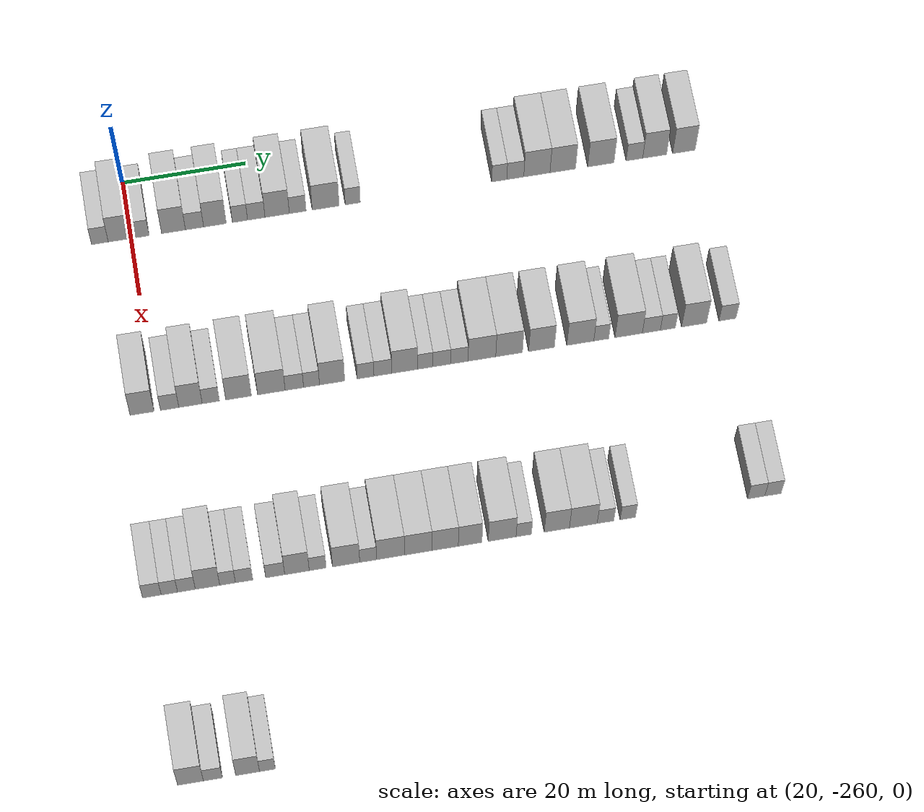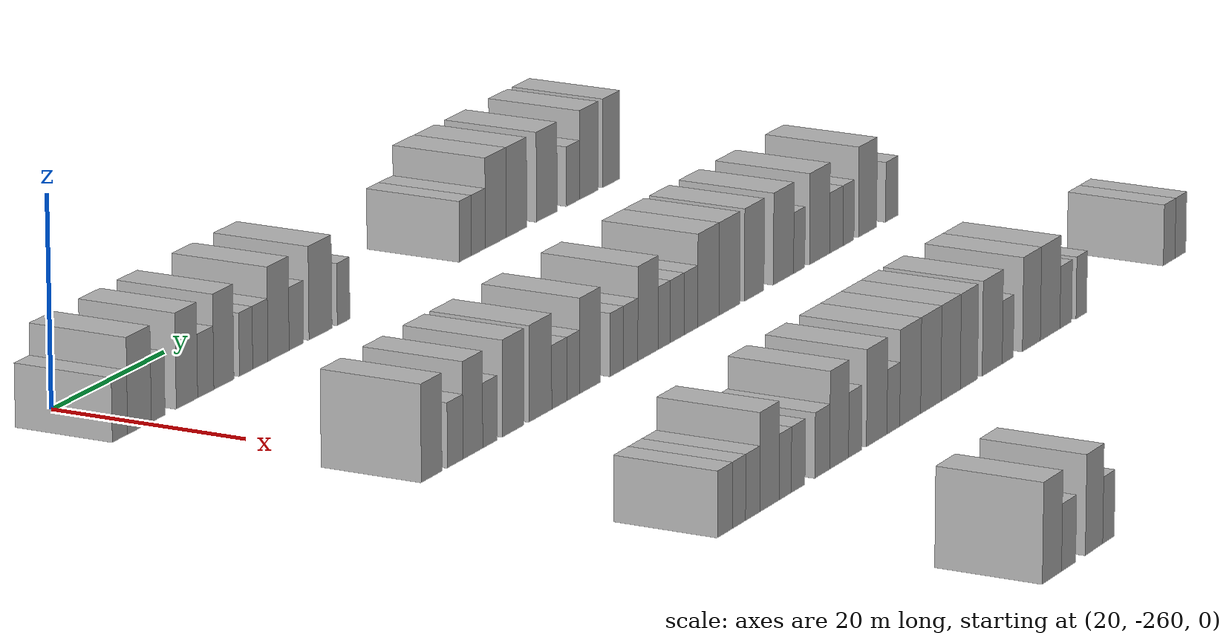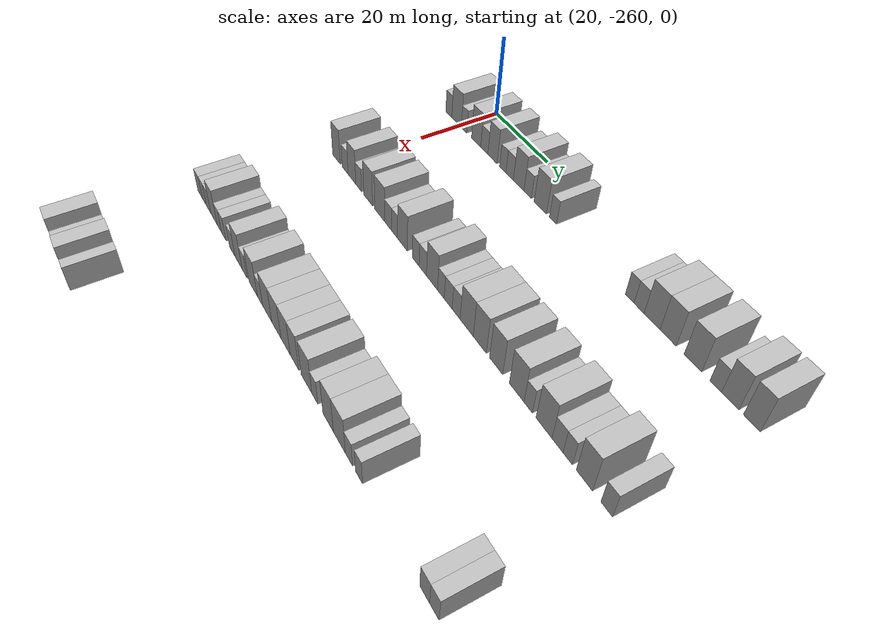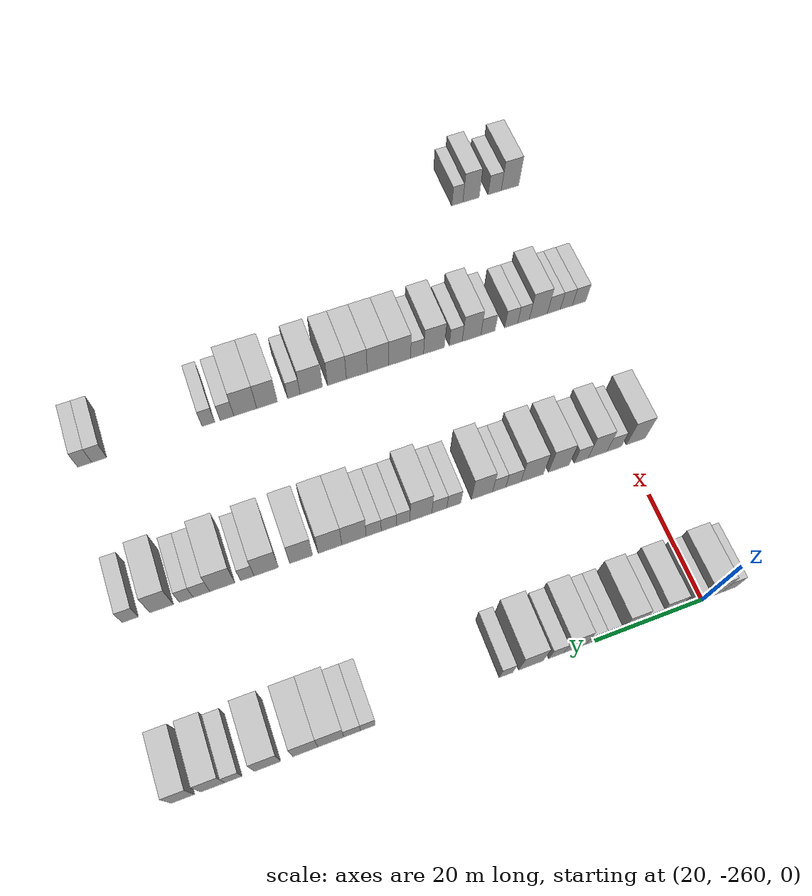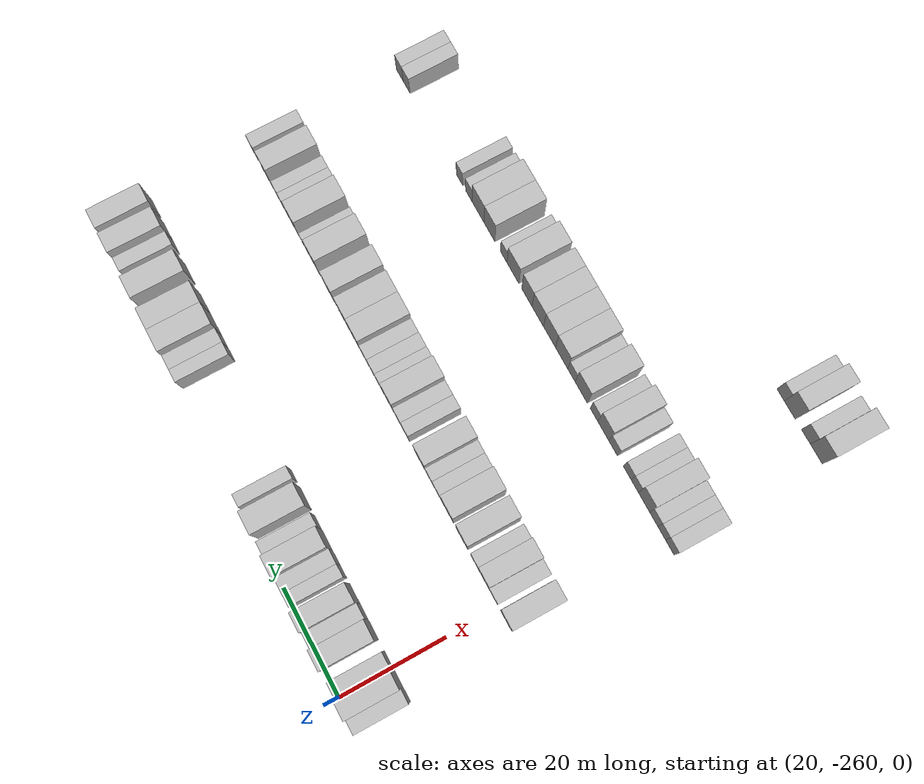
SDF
<sdf version="1.6">
 <world name="default">
  <model name="building_52">
   <static>1</static>
   <pose>25.0000 -264.9910 0 0.000000 0.000000 0.000000</pose>
   <link name="link">
    <pose>0 0 3.00 0 0 0</pose>
    <collision name="collision"><geometry><box><size>10.0000 2.6913 6.0000</size></box></geometry></collision>
    <visual name="visual">
     <cast_shadows>0</cast_shadows>
     <geometry><box><size>10.0000 2.6913 6.0000</size></box></geometry>
     <material>
      <script>
       <uri>model://HANNAS_wall/materials/scripts</uri>
       <uri>model://HANNAS_wall/materials/textures</uri>
       <name>vrc/HANNAS_wall</name>
      </script>
     </material>
    </visual>
   </link>
  </model>
  <model name="building_53">
   <static>1</static>
   <pose>25.0000 -261.5494 0 0.000000 0.000000 0.000000</pose>
   <link name="link">
    <pose>0 0 4.50 0 0 0</pose>
    <collision name="collision"><geometry><box><size>10.0000 4.1920 9.0000</size></box></geometry></collision>
    <visual name="visual">
     <cast_shadows>0</cast_shadows>
     <geometry><box><size>10.0000 4.1920 9.0000</size></box></geometry>
     <material>
      <script>
       <uri>model://HANNAS_wall/materials/scripts</uri>
       <uri>model://HANNAS_wall/materials/textures</uri>
       <name>vrc/HANNAS_wall</name>
      </script>
     </material>
    </visual>
   </link>
  </model>
  <model name="building_54">
   <static>1</static>
   <pose>25.0000 -258.2401 0 0.000000 0.000000 0.000000</pose>
   <link name="link">
    <pose>0 0 3.00 0 0 0</pose>
    <collision name="collision"><geometry><box><size>10.0000 2.4267 6.0000</size></box></geometry></collision>
    <visual name="visual">
     <cast_shadows>0</cast_shadows>
     <geometry><box><size>10.0000 2.4267 6.0000</size></box></geometry>
     <material>
      <script>
       <uri>model://HANNAS_wall/materials/scripts</uri>
       <uri>model://HANNAS_wall/materials/textures</uri>
       <name>vrc/HANNAS_wall</name>
      </script>
     </material>
    </visual>
   </link>
  </model>
  <model name="building_55">
   <static>1</static>
   <pose>25.0000 -253.1030 0 0.000000 0.000000 0.000000</pose>
   <link name="link">
    <pose>0 0 4.50 0 0 0</pose>
    <collision name="collision"><geometry><box><size>10.0000 3.8475 9.0000</size></box></geometry></collision>
    <visual name="visual">
     <cast_shadows>0</cast_shadows>
     <geometry><box><size>10.0000 3.8475 9.0000</size></box></geometry>
     <material>
      <script>
       <uri>model://HANNAS_wall/materials/scripts</uri>
       <uri>model://HANNAS_wall/materials/textures</uri>
       <name>vrc/HANNAS_wall</name>
      </script>
     </material>
    </visual>
   </link>
  </model>
  <model name="building_56">
   <static>1</static>
   <pose>25.0000 -249.7106 0 0.000000 0.000000 0.000000</pose>
   <link name="link">
    <pose>0 0 3.00 0 0 0</pose>
    <collision name="collision"><geometry><box><size>10.0000 2.9372 6.0000</size></box></geometry></collision>
    <visual name="visual">
     <cast_shadows>0</cast_shadows>
     <geometry><box><size>10.0000 2.9372 6.0000</size></box></geometry>
     <material>
      <script>
       <uri>model://HANNAS_wall/materials/scripts</uri>
       <uri>model://HANNAS_wall/materials/textures</uri>
       <name>vrc/HANNAS_wall</name>
      </script>
     </material>
    </visual>
   </link>
  </model>
  <model name="building_57">
   <static>1</static>
   <pose>25.0000 -246.4095 0 0.000000 0.000000 0.000000</pose>
   <link name="link">
    <pose>0 0 4.50 0 0 0</pose>
    <collision name="collision"><geometry><box><size>10.0000 3.6650 9.0000</size></box></geometry></collision>
    <visual name="visual">
     <cast_shadows>0</cast_shadows>
     <geometry><box><size>10.0000 3.6650 9.0000</size></box></geometry>
     <material>
      <script>
       <uri>model://HANNAS_wall/materials/scripts</uri>
       <uri>model://HANNAS_wall/materials/textures</uri>
       <name>vrc/HANNAS_wall</name>
      </script>
     </material>
    </visual>
   </link>
  </model>
  <model name="building_58">
   <static>1</static>
   <pose>25.0000 -242.3506 0 0.000000 0.000000 0.000000</pose>
   <link name="link">
    <pose>0 0 3.00 0 0 0</pose>
    <collision name="collision"><geometry><box><size>10.0000 2.4527 6.0000</size></box></geometry></collision>
    <visual name="visual">
     <cast_shadows>0</cast_shadows>
     <geometry><box><size>10.0000 2.4527 6.0000</size></box></geometry>
     <material>
      <script>
       <uri>model://HANNAS_wall/materials/scripts</uri>
       <uri>model://HANNAS_wall/materials/textures</uri>
       <name>vrc/HANNAS_wall</name>
      </script>
     </material>
    </visual>
   </link>
  </model>
  <model name="building_59">
   <static>1</static>
   <pose>25.0000 -239.7100 0 0.000000 0.000000 0.000000</pose>
   <link name="link">
    <pose>0 0 3.00 0 0 0</pose>
    <collision name="collision"><geometry><box><size>10.0000 2.8286 6.0000</size></box></geometry></collision>
    <visual name="visual">
     <cast_shadows>0</cast_shadows>
     <geometry><box><size>10.0000 2.8286 6.0000</size></box></geometry>
     <material>
      <script>
       <uri>model://HANNAS_wall/materials/scripts</uri>
       <uri>model://HANNAS_wall/materials/textures</uri>
       <name>vrc/HANNAS_wall</name>
      </script>
     </material>
    </visual>
   </link>
  </model>
  <model name="building_60">
   <static>1</static>
   <pose>25.0000 -236.3252 0 0.000000 0.000000 0.000000</pose>
   <link name="link">
    <pose>0 0 4.50 0 0 0</pose>
    <collision name="collision"><geometry><box><size>10.0000 3.9409 9.0000</size></box></geometry></collision>
    <visual name="visual">
     <cast_shadows>0</cast_shadows>
     <geometry><box><size>10.0000 3.9409 9.0000</size></box></geometry>
     <material>
      <script>
       <uri>model://HANNAS_wall/materials/scripts</uri>
       <uri>model://HANNAS_wall/materials/textures</uri>
       <name>vrc/HANNAS_wall</name>
      </script>
     </material>
    </visual>
   </link>
  </model>
  <model name="building_61">
   <static>1</static>
   <pose>25.0000 -232.9921 0 0.000000 0.000000 0.000000</pose>
   <link name="link">
    <pose>0 0 3.00 0 0 0</pose>
    <collision name="collision"><geometry><box><size>10.0000 2.7253 6.0000</size></box></geometry></collision>
    <visual name="visual">
     <cast_shadows>0</cast_shadows>
     <geometry><box><size>10.0000 2.7253 6.0000</size></box></geometry>
     <material>
      <script>
       <uri>model://HANNAS_wall/materials/scripts</uri>
       <uri>model://HANNAS_wall/materials/textures</uri>
       <name>vrc/HANNAS_wall</name>
      </script>
     </material>
    </visual>
   </link>
  </model>
  <model name="building_62">
   <static>1</static>
   <pose>25.0000 -228.4462 0 0.000000 0.000000 0.000000</pose>
   <link name="link">
    <pose>0 0 4.50 0 0 0</pose>
    <collision name="collision"><geometry><box><size>10.0000 4.3666 9.0000</size></box></geometry></collision>
    <visual name="visual">
     <cast_shadows>0</cast_shadows>
     <geometry><box><size>10.0000 4.3666 9.0000</size></box></geometry>
     <material>
      <script>
       <uri>model://HANNAS_wall/materials/scripts</uri>
       <uri>model://HANNAS_wall/materials/textures</uri>
       <name>vrc/HANNAS_wall</name>
      </script>
     </material>
    </visual>
   </link>
  </model>
  <model name="building_63">
   <static>1</static>
   <pose>25.0000 -224.0433 0 0.000000 0.000000 0.000000</pose>
   <link name="link">
    <pose>0 0 3.00 0 0 0</pose>
    <collision name="collision"><geometry><box><size>10.0000 2.4392 6.0000</size></box></geometry></collision>
    <visual name="visual">
     <cast_shadows>0</cast_shadows>
     <geometry><box><size>10.0000 2.4392 6.0000</size></box></geometry>
     <material>
      <script>
       <uri>model://HANNAS_wall/materials/scripts</uri>
       <uri>model://HANNAS_wall/materials/textures</uri>
       <name>vrc/HANNAS_wall</name>
      </script>
     </material>
    </visual>
   </link>
  </model>
  <model name="building_64">
   <static>1</static>
   <pose>25.0000 -200.1337 0 0.000000 0.000000 0.000000</pose>
   <link name="link">
    <pose>0 0 3.00 0 0 0</pose>
    <collision name="collision"><geometry><box><size>10.0000 2.4600 6.0000</size></box></geometry></collision>
    <visual name="visual">
     <cast_shadows>0</cast_shadows>
     <geometry><box><size>10.0000 2.4600 6.0000</size></box></geometry>
     <material>
      <script>
       <uri>model://HANNAS_wall/materials/scripts</uri>
       <uri>model://HANNAS_wall/materials/textures</uri>
       <name>vrc/HANNAS_wall</name>
      </script>
     </material>
    </visual>
   </link>
  </model>
  <model name="building_65">
   <static>1</static>
   <pose>25.0000 -197.5099 0 0.000000 0.000000 0.000000</pose>
   <link name="link">
    <pose>0 0 3.00 0 0 0</pose>
    <collision name="collision"><geometry><box><size>10.0000 2.7876 6.0000</size></box></geometry></collision>
    <visual name="visual">
     <cast_shadows>0</cast_shadows>
     <geometry><box><size>10.0000 2.7876 6.0000</size></box></geometry>
     <material>
      <script>
       <uri>model://HANNAS_wall/materials/scripts</uri>
       <uri>model://HANNAS_wall/materials/textures</uri>
       <name>vrc/HANNAS_wall</name>
      </script>
     </material>
    </visual>
   </link>
  </model>
  <model name="building_66">
   <static>1</static>
   <pose>25.0000 -193.9670 0 0.000000 0.000000 0.000000</pose>
   <link name="link">
    <pose>0 0 4.50 0 0 0</pose>
    <collision name="collision"><geometry><box><size>10.0000 4.2983 9.0000</size></box></geometry></collision>
    <visual name="visual">
     <cast_shadows>0</cast_shadows>
     <geometry><box><size>10.0000 4.2983 9.0000</size></box></geometry>
     <material>
      <script>
       <uri>model://HANNAS_wall/materials/scripts</uri>
       <uri>model://HANNAS_wall/materials/textures</uri>
       <name>vrc/HANNAS_wall</name>
      </script>
     </material>
    </visual>
   </link>
  </model>
  <model name="building_67">
   <static>1</static>
   <pose>25.0000 -189.7206 0 0.000000 0.000000 0.000000</pose>
   <link name="link">
    <pose>0 0 4.50 0 0 0</pose>
    <collision name="collision"><geometry><box><size>10.0000 4.1945 9.0000</size></box></geometry></collision>
    <visual name="visual">
     <cast_shadows>0</cast_shadows>
     <geometry><box><size>10.0000 4.1945 9.0000</size></box></geometry>
     <material>
      <script>
       <uri>model://HANNAS_wall/materials/scripts</uri>
       <uri>model://HANNAS_wall/materials/textures</uri>
       <name>vrc/HANNAS_wall</name>
      </script>
     </material>
    </visual>
   </link>
  </model>
  <model name="building_68">
   <static>1</static>
   <pose>25.0000 -183.4657 0 0.000000 0.000000 0.000000</pose>
   <link name="link">
    <pose>0 0 4.50 0 0 0</pose>
    <collision name="collision"><geometry><box><size>10.0000 4.3154 9.0000</size></box></geometry></collision>
    <visual name="visual">
     <cast_shadows>0</cast_shadows>
     <geometry><box><size>10.0000 4.3154 9.0000</size></box></geometry>
     <material>
      <script>
       <uri>model://HANNAS_wall/materials/scripts</uri>
       <uri>model://HANNAS_wall/materials/textures</uri>
       <name>vrc/HANNAS_wall</name>
      </script>
     </material>
    </visual>
   </link>
  </model>
  <model name="building_69">
   <static>1</static>
   <pose>25.0000 -177.9456 0 0.000000 0.000000 0.000000</pose>
   <link name="link">
    <pose>0 0 3.00 0 0 0</pose>
    <collision name="collision"><geometry><box><size>10.0000 2.7247 6.0000</size></box></geometry></collision>
    <visual name="visual">
     <cast_shadows>0</cast_shadows>
     <geometry><box><size>10.0000 2.7247 6.0000</size></box></geometry>
     <material>
      <script>
       <uri>model://HANNAS_wall/materials/scripts</uri>
       <uri>model://HANNAS_wall/materials/textures</uri>
       <name>vrc/HANNAS_wall</name>
      </script>
     </material>
    </visual>
   </link>
  </model>
  <model name="building_70">
   <static>1</static>
   <pose>25.0000 -174.6141 0 0.000000 0.000000 0.000000</pose>
   <link name="link">
    <pose>0 0 4.50 0 0 0</pose>
    <collision name="collision"><geometry><box><size>10.0000 3.9383 9.0000</size></box></geometry></collision>
    <visual name="visual">
     <cast_shadows>0</cast_shadows>
     <geometry><box><size>10.0000 3.9383 9.0000</size></box></geometry>
     <material>
      <script>
       <uri>model://HANNAS_wall/materials/scripts</uri>
       <uri>model://HANNAS_wall/materials/textures</uri>
       <name>vrc/HANNAS_wall</name>
      </script>
     </material>
    </visual>
   </link>
  </model>
  <model name="building_71">
   <static>1</static>
   <pose>25.0000 -169.7939 0 0.000000 0.000000 0.000000</pose>
   <link name="link">
    <pose>0 0 4.50 0 0 0</pose>
    <collision name="collision"><geometry><box><size>10.0000 3.7021 9.0000</size></box></geometry></collision>
    <visual name="visual">
     <cast_shadows>0</cast_shadows>
     <geometry><box><size>10.0000 3.7021 9.0000</size></box></geometry>
     <material>
      <script>
       <uri>model://HANNAS_wall/materials/scripts</uri>
       <uri>model://HANNAS_wall/materials/textures</uri>
       <name>vrc/HANNAS_wall</name>
      </script>
     </material>
    </visual>
   </link>
  </model>
  <model name="building_275">
   <static>1</static>
   <pose>55.0000 -262.3525 0 0.000000 0.000000 0.000000</pose>
   <link name="link">
    <pose>0 0 4.50 0 0 0</pose>
    <collision name="collision"><geometry><box><size>10.0000 3.7981 9.0000</size></box></geometry></collision>
    <visual name="visual">
     <cast_shadows>0</cast_shadows>
     <geometry><box><size>10.0000 3.7981 9.0000</size></box></geometry>
     <material>
      <script>
       <uri>model://HANNAS_wall/materials/scripts</uri>
       <uri>model://HANNAS_wall/materials/textures</uri>
       <name>vrc/HANNAS_wall</name>
      </script>
     </material>
    </visual>
   </link>
  </model>
  <model name="building_276">
   <static>1</static>
   <pose>55.0000 -258.0051 0 0.000000 0.000000 0.000000</pose>
   <link name="link">
    <pose>0 0 3.00 0 0 0</pose>
    <collision name="collision"><geometry><box><size>10.0000 2.8965 6.0000</size></box></geometry></collision>
    <visual name="visual">
     <cast_shadows>0</cast_shadows>
     <geometry><box><size>10.0000 2.8965 6.0000</size></box></geometry>
     <material>
      <script>
       <uri>model://HANNAS_wall/materials/scripts</uri>
       <uri>model://HANNAS_wall/materials/textures</uri>
       <name>vrc/HANNAS_wall</name>
      </script>
     </material>
    </visual>
   </link>
  </model>
  <model name="building_277">
   <static>1</static>
   <pose>55.0000 -254.7035 0 0.000000 0.000000 0.000000</pose>
   <link name="link">
    <pose>0 0 4.50 0 0 0</pose>
    <collision name="collision"><geometry><box><size>10.0000 3.7068 9.0000</size></box></geometry></collision>
    <visual name="visual">
     <cast_shadows>0</cast_shadows>
     <geometry><box><size>10.0000 3.7068 9.0000</size></box></geometry>
     <material>
      <script>
       <uri>model://HANNAS_wall/materials/scripts</uri>
       <uri>model://HANNAS_wall/materials/textures</uri>
       <name>vrc/HANNAS_wall</name>
      </script>
     </material>
    </visual>
   </link>
  </model>
  <model name="building_278">
   <static>1</static>
   <pose>55.0000 -251.4921 0 0.000000 0.000000 0.000000</pose>
   <link name="link">
    <pose>0 0 3.00 0 0 0</pose>
    <collision name="collision"><geometry><box><size>10.0000 2.7159 6.0000</size></box></geometry></collision>
    <visual name="visual">
     <cast_shadows>0</cast_shadows>
     <geometry><box><size>10.0000 2.7159 6.0000</size></box></geometry>
     <material>
      <script>
       <uri>model://HANNAS_wall/materials/scripts</uri>
       <uri>model://HANNAS_wall/materials/textures</uri>
       <name>vrc/HANNAS_wall</name>
      </script>
     </material>
    </visual>
   </link>
  </model>
  <model name="building_279">
   <static>1</static>
   <pose>55.0000 -247.1035 0 0.000000 0.000000 0.000000</pose>
   <link name="link">
    <pose>0 0 4.50 0 0 0</pose>
    <collision name="collision"><geometry><box><size>10.0000 4.0614 9.0000</size></box></geometry></collision>
    <visual name="visual">
     <cast_shadows>0</cast_shadows>
     <geometry><box><size>10.0000 4.0614 9.0000</size></box></geometry>
     <material>
      <script>
       <uri>model://HANNAS_wall/materials/scripts</uri>
       <uri>model://HANNAS_wall/materials/textures</uri>
       <name>vrc/HANNAS_wall</name>
      </script>
     </material>
    </visual>
   </link>
  </model>
  <model name="building_280">
   <static>1</static>
   <pose>55.0000 -241.8878 0 0.000000 0.000000 0.000000</pose>
   <link name="link">
    <pose>0 0 4.50 0 0 0</pose>
    <collision name="collision"><geometry><box><size>10.0000 4.3700 9.0000</size></box></geometry></collision>
    <visual name="visual">
     <cast_shadows>0</cast_shadows>
     <geometry><box><size>10.0000 4.3700 9.0000</size></box></geometry>
     <material>
      <script>
       <uri>model://HANNAS_wall/materials/scripts</uri>
       <uri>model://HANNAS_wall/materials/textures</uri>
       <name>vrc/HANNAS_wall</name>
      </script>
     </material>
    </visual>
   </link>
  </model>
  <model name="building_281">
   <static>1</static>
   <pose>55.0000 -238.2404 0 0.000000 0.000000 0.000000</pose>
   <link name="link">
    <pose>0 0 3.00 0 0 0</pose>
    <collision name="collision"><geometry><box><size>10.0000 2.9246 6.0000</size></box></geometry></collision>
    <visual name="visual">
     <cast_shadows>0</cast_shadows>
     <geometry><box><size>10.0000 2.9246 6.0000</size></box></geometry>
     <material>
      <script>
       <uri>model://HANNAS_wall/materials/scripts</uri>
       <uri>model://HANNAS_wall/materials/textures</uri>
       <name>vrc/HANNAS_wall</name>
      </script>
     </material>
    </visual>
   </link>
  </model>
  <model name="building_282">
   <static>1</static>
   <pose>55.0000 -235.5116 0 0.000000 0.000000 0.000000</pose>
   <link name="link">
    <pose>0 0 3.00 0 0 0</pose>
    <collision name="collision"><geometry><box><size>10.0000 2.5330 6.0000</size></box></geometry></collision>
    <visual name="visual">
     <cast_shadows>0</cast_shadows>
     <geometry><box><size>10.0000 2.5330 6.0000</size></box></geometry>
     <material>
      <script>
       <uri>model://HANNAS_wall/materials/scripts</uri>
       <uri>model://HANNAS_wall/materials/textures</uri>
       <name>vrc/HANNAS_wall</name>
      </script>
     </material>
    </visual>
   </link>
  </model>
  <model name="building_283">
   <static>1</static>
   <pose>55.0000 -232.2417 0 0.000000 0.000000 0.000000</pose>
   <link name="link">
    <pose>0 0 4.50 0 0 0</pose>
    <collision name="collision"><geometry><box><size>10.0000 4.0069 9.0000</size></box></geometry></collision>
    <visual name="visual">
     <cast_shadows>0</cast_shadows>
     <geometry><box><size>10.0000 4.0069 9.0000</size></box></geometry>
     <material>
      <script>
       <uri>model://HANNAS_wall/materials/scripts</uri>
       <uri>model://HANNAS_wall/materials/textures</uri>
       <name>vrc/HANNAS_wall</name>
      </script>
     </material>
    </visual>
   </link>
  </model>
  <model name="building_284">
   <static>1</static>
   <pose>55.0000 -226.9097 0 0.000000 0.000000 0.000000</pose>
   <link name="link">
    <pose>0 0 3.00 0 0 0</pose>
    <collision name="collision"><geometry><box><size>10.0000 2.6571 6.0000</size></box></geometry></collision>
    <visual name="visual">
     <cast_shadows>0</cast_shadows>
     <geometry><box><size>10.0000 2.6571 6.0000</size></box></geometry>
     <material>
      <script>
       <uri>model://HANNAS_wall/materials/scripts</uri>
       <uri>model://HANNAS_wall/materials/textures</uri>
       <name>vrc/HANNAS_wall</name>
      </script>
     </material>
    </visual>
   </link>
  </model>
  <model name="building_285">
   <static>1</static>
   <pose>55.0000 -224.1643 0 0.000000 0.000000 0.000000</pose>
   <link name="link">
    <pose>0 0 3.00 0 0 0</pose>
    <collision name="collision"><geometry><box><size>10.0000 2.8337 6.0000</size></box></geometry></collision>
    <visual name="visual">
     <cast_shadows>0</cast_shadows>
     <geometry><box><size>10.0000 2.8337 6.0000</size></box></geometry>
     <material>
      <script>
       <uri>model://HANNAS_wall/materials/scripts</uri>
       <uri>model://HANNAS_wall/materials/textures</uri>
       <name>vrc/HANNAS_wall</name>
      </script>
     </material>
    </visual>
   </link>
  </model>
  <model name="building_286">
   <static>1</static>
   <pose>55.0000 -220.6817 0 0.000000 0.000000 0.000000</pose>
   <link name="link">
    <pose>0 0 4.50 0 0 0</pose>
    <collision name="collision"><geometry><box><size>10.0000 4.1314 9.0000</size></box></geometry></collision>
    <visual name="visual">
     <cast_shadows>0</cast_shadows>
     <geometry><box><size>10.0000 4.1314 9.0000</size></box></geometry>
     <material>
      <script>
       <uri>model://HANNAS_wall/materials/scripts</uri>
       <uri>model://HANNAS_wall/materials/textures</uri>
       <name>vrc/HANNAS_wall</name>
      </script>
     </material>
    </visual>
   </link>
  </model>
  <model name="building_287">
   <static>1</static>
   <pose>55.0000 -217.3906 0 0.000000 0.000000 0.000000</pose>
   <link name="link">
    <pose>0 0 3.00 0 0 0</pose>
    <collision name="collision"><geometry><box><size>10.0000 2.4509 6.0000</size></box></geometry></collision>
    <visual name="visual">
     <cast_shadows>0</cast_shadows>
     <geometry><box><size>10.0000 2.4509 6.0000</size></box></geometry>
     <material>
      <script>
       <uri>model://HANNAS_wall/materials/scripts</uri>
       <uri>model://HANNAS_wall/materials/textures</uri>
       <name>vrc/HANNAS_wall</name>
      </script>
     </material>
    </visual>
   </link>
  </model>
  <model name="building_288">
   <static>1</static>
   <pose>55.0000 -214.7523 0 0.000000 0.000000 0.000000</pose>
   <link name="link">
    <pose>0 0 3.00 0 0 0</pose>
    <collision name="collision"><geometry><box><size>10.0000 2.8257 6.0000</size></box></geometry></collision>
    <visual name="visual">
     <cast_shadows>0</cast_shadows>
     <geometry><box><size>10.0000 2.8257 6.0000</size></box></geometry>
     <material>
      <script>
       <uri>model://HANNAS_wall/materials/scripts</uri>
       <uri>model://HANNAS_wall/materials/textures</uri>
       <name>vrc/HANNAS_wall</name>
      </script>
     </material>
    </visual>
   </link>
  </model>
  <model name="building_289">
   <static>1</static>
   <pose>55.0000 -211.9487 0 0.000000 0.000000 0.000000</pose>
   <link name="link">
    <pose>0 0 3.00 0 0 0</pose>
    <collision name="collision"><geometry><box><size>10.0000 2.7816 6.0000</size></box></geometry></collision>
    <visual name="visual">
     <cast_shadows>0</cast_shadows>
     <geometry><box><size>10.0000 2.7816 6.0000</size></box></geometry>
     <material>
      <script>
       <uri>model://HANNAS_wall/materials/scripts</uri>
       <uri>model://HANNAS_wall/materials/textures</uri>
       <name>vrc/HANNAS_wall</name>
      </script>
     </material>
    </visual>
   </link>
  </model>
  <model name="building_290">
   <static>1</static>
   <pose>55.0000 -208.3423 0 0.000000 0.000000 0.000000</pose>
   <link name="link">
    <pose>0 0 4.50 0 0 0</pose>
    <collision name="collision"><geometry><box><size>10.0000 4.4313 9.0000</size></box></geometry></collision>
    <visual name="visual">
     <cast_shadows>0</cast_shadows>
     <geometry><box><size>10.0000 4.4313 9.0000</size></box></geometry>
     <material>
      <script>
       <uri>model://HANNAS_wall/materials/scripts</uri>
       <uri>model://HANNAS_wall/materials/textures</uri>
       <name>vrc/HANNAS_wall</name>
      </script>
     </material>
    </visual>
   </link>
  </model>
  <model name="building_291">
   <static>1</static>
   <pose>55.0000 -203.9882 0 0.000000 0.000000 0.000000</pose>
   <link name="link">
    <pose>0 0 4.50 0 0 0</pose>
    <collision name="collision"><geometry><box><size>10.0000 4.2769 9.0000</size></box></geometry></collision>
    <visual name="visual">
     <cast_shadows>0</cast_shadows>
     <geometry><box><size>10.0000 4.2769 9.0000</size></box></geometry>
     <material>
      <script>
       <uri>model://HANNAS_wall/materials/scripts</uri>
       <uri>model://HANNAS_wall/materials/textures</uri>
       <name>vrc/HANNAS_wall</name>
      </script>
     </material>
    </visual>
   </link>
  </model>
  <model name="building_292">
   <static>1</static>
   <pose>55.0000 -198.7844 0 0.000000 0.000000 0.000000</pose>
   <link name="link">
    <pose>0 0 4.50 0 0 0</pose>
    <collision name="collision"><geometry><box><size>10.0000 4.1308 9.0000</size></box></geometry></collision>
    <visual name="visual">
     <cast_shadows>0</cast_shadows>
     <geometry><box><size>10.0000 4.1308 9.0000</size></box></geometry>
     <material>
      <script>
       <uri>model://HANNAS_wall/materials/scripts</uri>
       <uri>model://HANNAS_wall/materials/textures</uri>
       <name>vrc/HANNAS_wall</name>
      </script>
     </material>
    </visual>
   </link>
  </model>
  <model name="building_293">
   <static>1</static>
   <pose>55.0000 -192.5557 0 0.000000 0.000000 0.000000</pose>
   <link name="link">
    <pose>0 0 4.50 0 0 0</pose>
    <collision name="collision"><geometry><box><size>10.0000 4.3266 9.0000</size></box></geometry></collision>
    <visual name="visual">
     <cast_shadows>0</cast_shadows>
     <geometry><box><size>10.0000 4.3266 9.0000</size></box></geometry>
     <material>
      <script>
       <uri>model://HANNAS_wall/materials/scripts</uri>
       <uri>model://HANNAS_wall/materials/textures</uri>
       <name>vrc/HANNAS_wall</name>
      </script>
     </material>
    </visual>
   </link>
  </model>
  <model name="building_294">
   <static>1</static>
   <pose>55.0000 -189.1878 0 0.000000 0.000000 0.000000</pose>
   <link name="link">
    <pose>0 0 3.00 0 0 0</pose>
    <collision name="collision"><geometry><box><size>10.0000 2.4092 6.0000</size></box></geometry></collision>
    <visual name="visual">
     <cast_shadows>0</cast_shadows>
     <geometry><box><size>10.0000 2.4092 6.0000</size></box></geometry>
     <material>
      <script>
       <uri>model://HANNAS_wall/materials/scripts</uri>
       <uri>model://HANNAS_wall/materials/textures</uri>
       <name>vrc/HANNAS_wall</name>
      </script>
     </material>
    </visual>
   </link>
  </model>
  <model name="building_295">
   <static>1</static>
   <pose>55.0000 -184.7825 0 0.000000 0.000000 0.000000</pose>
   <link name="link">
    <pose>0 0 4.50 0 0 0</pose>
    <collision name="collision"><geometry><box><size>10.0000 4.4012 9.0000</size></box></geometry></collision>
    <visual name="visual">
     <cast_shadows>0</cast_shadows>
     <geometry><box><size>10.0000 4.4012 9.0000</size></box></geometry>
     <material>
      <script>
       <uri>model://HANNAS_wall/materials/scripts</uri>
       <uri>model://HANNAS_wall/materials/textures</uri>
       <name>vrc/HANNAS_wall</name>
      </script>
     </material>
    </visual>
   </link>
  </model>
  <model name="building_296">
   <static>1</static>
   <pose>55.0000 -181.1320 0 0.000000 0.000000 0.000000</pose>
   <link name="link">
    <pose>0 0 3.00 0 0 0</pose>
    <collision name="collision"><geometry><box><size>10.0000 2.8998 6.0000</size></box></geometry></collision>
    <visual name="visual">
     <cast_shadows>0</cast_shadows>
     <geometry><box><size>10.0000 2.8998 6.0000</size></box></geometry>
     <material>
      <script>
       <uri>model://HANNAS_wall/materials/scripts</uri>
       <uri>model://HANNAS_wall/materials/textures</uri>
       <name>vrc/HANNAS_wall</name>
      </script>
     </material>
    </visual>
   </link>
  </model>
  <model name="building_297">
   <static>1</static>
   <pose>55.0000 -178.4665 0 0.000000 0.000000 0.000000</pose>
   <link name="link">
    <pose>0 0 3.00 0 0 0</pose>
    <collision name="collision"><geometry><box><size>10.0000 2.4311 6.0000</size></box></geometry></collision>
    <visual name="visual">
     <cast_shadows>0</cast_shadows>
     <geometry><box><size>10.0000 2.4311 6.0000</size></box></geometry>
     <material>
      <script>
       <uri>model://HANNAS_wall/materials/scripts</uri>
       <uri>model://HANNAS_wall/materials/textures</uri>
       <name>vrc/HANNAS_wall</name>
      </script>
     </material>
    </visual>
   </link>
  </model>
  <model name="building_298">
   <static>1</static>
   <pose>55.0000 -174.2325 0 0.000000 0.000000 0.000000</pose>
   <link name="link">
    <pose>0 0 4.50 0 0 0</pose>
    <collision name="collision"><geometry><box><size>10.0000 4.0370 9.0000</size></box></geometry></collision>
    <visual name="visual">
     <cast_shadows>0</cast_shadows>
     <geometry><box><size>10.0000 4.0370 9.0000</size></box></geometry>
     <material>
      <script>
       <uri>model://HANNAS_wall/materials/scripts</uri>
       <uri>model://HANNAS_wall/materials/textures</uri>
       <name>vrc/HANNAS_wall</name>
      </script>
     </material>
    </visual>
   </link>
  </model>
  <model name="building_299">
   <static>1</static>
   <pose>55.0000 -168.8327 0 0.000000 0.000000 0.000000</pose>
   <link name="link">
    <pose>0 0 3.00 0 0 0</pose>
    <collision name="collision"><geometry><box><size>10.0000 2.7624 6.0000</size></box></geometry></collision>
    <visual name="visual">
     <cast_shadows>0</cast_shadows>
     <geometry><box><size>10.0000 2.7624 6.0000</size></box></geometry>
     <material>
      <script>
       <uri>model://HANNAS_wall/materials/scripts</uri>
       <uri>model://HANNAS_wall/materials/textures</uri>
       <name>vrc/HANNAS_wall</name>
      </script>
     </material>
    </visual>
   </link>
  </model>
  <model name="building_500">
   <static>1</static>
   <pose>85.0000 -265.0269 0 0.000000 0.000000 0.000000</pose>
   <link name="link">
    <pose>0 0 3.00 0 0 0</pose>
    <collision name="collision"><geometry><box><size>10.0000 2.8655 6.0000</size></box></geometry></collision>
    <visual name="visual">
     <cast_shadows>0</cast_shadows>
     <geometry><box><size>10.0000 2.8655 6.0000</size></box></geometry>
     <material>
      <script>
       <uri>model://HANNAS_wall/materials/scripts</uri>
       <uri>model://HANNAS_wall/materials/textures</uri>
       <name>vrc/HANNAS_wall</name>
      </script>
     </material>
    </visual>
   </link>
  </model>
  <model name="building_501">
   <static>1</static>
   <pose>85.0000 -262.3243 0 0.000000 0.000000 0.000000</pose>
   <link name="link">
    <pose>0 0 3.00 0 0 0</pose>
    <collision name="collision"><geometry><box><size>10.0000 2.5398 6.0000</size></box></geometry></collision>
    <visual name="visual">
     <cast_shadows>0</cast_shadows>
     <geometry><box><size>10.0000 2.5398 6.0000</size></box></geometry>
     <material>
      <script>
       <uri>model://HANNAS_wall/materials/scripts</uri>
       <uri>model://HANNAS_wall/materials/textures</uri>
       <name>vrc/HANNAS_wall</name>
      </script>
     </material>
    </visual>
   </link>
  </model>
  <model name="building_502">
   <static>1</static>
   <pose>85.0000 -259.6791 0 0.000000 0.000000 0.000000</pose>
   <link name="link">
    <pose>0 0 3.00 0 0 0</pose>
    <collision name="collision"><geometry><box><size>10.0000 2.7506 6.0000</size></box></geometry></collision>
    <visual name="visual">
     <cast_shadows>0</cast_shadows>
     <geometry><box><size>10.0000 2.7506 6.0000</size></box></geometry>
     <material>
      <script>
       <uri>model://HANNAS_wall/materials/scripts</uri>
       <uri>model://HANNAS_wall/materials/textures</uri>
       <name>vrc/HANNAS_wall</name>
      </script>
     </material>
    </visual>
   </link>
  </model>
  <model name="building_503">
   <static>1</static>
   <pose>85.0000 -256.4132 0 0.000000 0.000000 0.000000</pose>
   <link name="link">
    <pose>0 0 4.50 0 0 0</pose>
    <collision name="collision"><geometry><box><size>10.0000 3.7813 9.0000</size></box></geometry></collision>
    <visual name="visual">
     <cast_shadows>0</cast_shadows>
     <geometry><box><size>10.0000 3.7813 9.0000</size></box></geometry>
     <material>
      <script>
       <uri>model://HANNAS_wall/materials/scripts</uri>
       <uri>model://HANNAS_wall/materials/textures</uri>
       <name>vrc/HANNAS_wall</name>
      </script>
     </material>
    </visual>
   </link>
  </model>
  <model name="building_504">
   <static>1</static>
   <pose>85.0000 -253.3120 0 0.000000 0.000000 0.000000</pose>
   <link name="link">
    <pose>0 0 3.00 0 0 0</pose>
    <collision name="collision"><geometry><box><size>10.0000 2.4211 6.0000</size></box></geometry></collision>
    <visual name="visual">
     <cast_shadows>0</cast_shadows>
     <geometry><box><size>10.0000 2.4211 6.0000</size></box></geometry>
     <material>
      <script>
       <uri>model://HANNAS_wall/materials/scripts</uri>
       <uri>model://HANNAS_wall/materials/textures</uri>
       <name>vrc/HANNAS_wall</name>
      </script>
     </material>
    </visual>
   </link>
  </model>
  <model name="building_505">
   <static>1</static>
   <pose>85.0000 -250.7532 0 0.000000 0.000000 0.000000</pose>
   <link name="link">
    <pose>0 0 3.00 0 0 0</pose>
    <collision name="collision"><geometry><box><size>10.0000 2.6965 6.0000</size></box></geometry></collision>
    <visual name="visual">
     <cast_shadows>0</cast_shadows>
     <geometry><box><size>10.0000 2.6965 6.0000</size></box></geometry>
     <material>
      <script>
       <uri>model://HANNAS_wall/materials/scripts</uri>
       <uri>model://HANNAS_wall/materials/textures</uri>
       <name>vrc/HANNAS_wall</name>
      </script>
     </material>
    </visual>
   </link>
  </model>
  <model name="building_506">
   <static>1</static>
   <pose>85.0000 -245.9302 0 0.000000 0.000000 0.000000</pose>
   <link name="link">
    <pose>0 0 3.00 0 0 0</pose>
    <collision name="collision"><geometry><box><size>10.0000 2.9495 6.0000</size></box></geometry></collision>
    <visual name="visual">
     <cast_shadows>0</cast_shadows>
     <geometry><box><size>10.0000 2.9495 6.0000</size></box></geometry>
     <material>
      <script>
       <uri>model://HANNAS_wall/materials/scripts</uri>
       <uri>model://HANNAS_wall/materials/textures</uri>
       <name>vrc/HANNAS_wall</name>
      </script>
     </material>
    </visual>
   </link>
  </model>
  <model name="building_507">
   <static>1</static>
   <pose>85.0000 -242.5491 0 0.000000 0.000000 0.000000</pose>
   <link name="link">
    <pose>0 0 4.50 0 0 0</pose>
    <collision name="collision"><geometry><box><size>10.0000 3.8126 9.0000</size></box></geometry></collision>
    <visual name="visual">
     <cast_shadows>0</cast_shadows>
     <geometry><box><size>10.0000 3.8126 9.0000</size></box></geometry>
     <material>
      <script>
       <uri>model://HANNAS_wall/materials/scripts</uri>
       <uri>model://HANNAS_wall/materials/textures</uri>
       <name>vrc/HANNAS_wall</name>
      </script>
     </material>
    </visual>
   </link>
  </model>
  <model name="building_508">
   <static>1</static>
   <pose>85.0000 -239.3296 0 0.000000 0.000000 0.000000</pose>
   <link name="link">
    <pose>0 0 3.00 0 0 0</pose>
    <collision name="collision"><geometry><box><size>10.0000 2.6264 6.0000</size></box></geometry></collision>
    <visual name="visual">
     <cast_shadows>0</cast_shadows>
     <geometry><box><size>10.0000 2.6264 6.0000</size></box></geometry>
     <material>
      <script>
       <uri>model://HANNAS_wall/materials/scripts</uri>
       <uri>model://HANNAS_wall/materials/textures</uri>
       <name>vrc/HANNAS_wall</name>
      </script>
     </material>
    </visual>
   </link>
  </model>
  <model name="building_509">
   <static>1</static>
   <pose>85.0000 -234.9002 0 0.000000 0.000000 0.000000</pose>
   <link name="link">
    <pose>0 0 4.50 0 0 0</pose>
    <collision name="collision"><geometry><box><size>10.0000 4.2324 9.0000</size></box></geometry></collision>
    <visual name="visual">
     <cast_shadows>0</cast_shadows>
     <geometry><box><size>10.0000 4.2324 9.0000</size></box></geometry>
     <material>
      <script>
       <uri>model://HANNAS_wall/materials/scripts</uri>
       <uri>model://HANNAS_wall/materials/textures</uri>
       <name>vrc/HANNAS_wall</name>
      </script>
     </material>
    </visual>
   </link>
  </model>
  <model name="building_510">
   <static>1</static>
   <pose>85.0000 -231.4675 0 0.000000 0.000000 0.000000</pose>
   <link name="link">
    <pose>0 0 3.00 0 0 0</pose>
    <collision name="collision"><geometry><box><size>10.0000 2.6330 6.0000</size></box></geometry></collision>
    <visual name="visual">
     <cast_shadows>0</cast_shadows>
     <geometry><box><size>10.0000 2.6330 6.0000</size></box></geometry>
     <material>
      <script>
       <uri>model://HANNAS_wall/materials/scripts</uri>
       <uri>model://HANNAS_wall/materials/textures</uri>
       <name>vrc/HANNAS_wall</name>
      </script>
     </material>
    </visual>
   </link>
  </model>
  <model name="building_511">
   <static>1</static>
   <pose>85.0000 -227.9701 0 0.000000 0.000000 0.000000</pose>
   <link name="link">
    <pose>0 0 4.50 0 0 0</pose>
    <collision name="collision"><geometry><box><size>10.0000 4.3618 9.0000</size></box></geometry></collision>
    <visual name="visual">
     <cast_shadows>0</cast_shadows>
     <geometry><box><size>10.0000 4.3618 9.0000</size></box></geometry>
     <material>
      <script>
       <uri>model://HANNAS_wall/materials/scripts</uri>
       <uri>model://HANNAS_wall/materials/textures</uri>
       <name>vrc/HANNAS_wall</name>
      </script>
     </material>
    </visual>
   </link>
  </model>
  <model name="building_512">
   <static>1</static>
   <pose>85.0000 -223.6549 0 0.000000 0.000000 0.000000</pose>
   <link name="link">
    <pose>0 0 4.50 0 0 0</pose>
    <collision name="collision"><geometry><box><size>10.0000 4.2687 9.0000</size></box></geometry></collision>
    <visual name="visual">
     <cast_shadows>0</cast_shadows>
     <geometry><box><size>10.0000 4.2687 9.0000</size></box></geometry>
     <material>
      <script>
       <uri>model://HANNAS_wall/materials/scripts</uri>
       <uri>model://HANNAS_wall/materials/textures</uri>
       <name>vrc/HANNAS_wall</name>
      </script>
     </material>
    </visual>
   </link>
  </model>
  <model name="building_513">
   <static>1</static>
   <pose>85.0000 -219.4665 0 0.000000 0.000000 0.000000</pose>
   <link name="link">
    <pose>0 0 4.50 0 0 0</pose>
    <collision name="collision"><geometry><box><size>10.0000 4.1081 9.0000</size></box></geometry></collision>
    <visual name="visual">
     <cast_shadows>0</cast_shadows>
     <geometry><box><size>10.0000 4.1081 9.0000</size></box></geometry>
     <material>
      <script>
       <uri>model://HANNAS_wall/materials/scripts</uri>
       <uri>model://HANNAS_wall/materials/textures</uri>
       <name>vrc/HANNAS_wall</name>
      </script>
     </material>
    </visual>
   </link>
  </model>
  <model name="building_514">
   <static>1</static>
   <pose>85.0000 -215.5626 0 0.000000 0.000000 0.000000</pose>
   <link name="link">
    <pose>0 0 4.50 0 0 0</pose>
    <collision name="collision"><geometry><box><size>10.0000 3.6996 9.0000</size></box></geometry></collision>
    <visual name="visual">
     <cast_shadows>0</cast_shadows>
     <geometry><box><size>10.0000 3.6996 9.0000</size></box></geometry>
     <material>
      <script>
       <uri>model://HANNAS_wall/materials/scripts</uri>
       <uri>model://HANNAS_wall/materials/textures</uri>
       <name>vrc/HANNAS_wall</name>
      </script>
     </material>
    </visual>
   </link>
  </model>
  <model name="building_515">
   <static>1</static>
   <pose>85.0000 -210.5380 0 0.000000 0.000000 0.000000</pose>
   <link name="link">
    <pose>0 0 4.50 0 0 0</pose>
    <collision name="collision"><geometry><box><size>10.0000 4.3496 9.0000</size></box></geometry></collision>
    <visual name="visual">
     <cast_shadows>0</cast_shadows>
     <geometry><box><size>10.0000 4.3496 9.0000</size></box></geometry>
     <material>
      <script>
       <uri>model://HANNAS_wall/materials/scripts</uri>
       <uri>model://HANNAS_wall/materials/textures</uri>
       <name>vrc/HANNAS_wall</name>
      </script>
     </material>
    </visual>
   </link>
  </model>
  <model name="building_516">
   <static>1</static>
   <pose>85.0000 -207.1569 0 0.000000 0.000000 0.000000</pose>
   <link name="link">
    <pose>0 0 3.00 0 0 0</pose>
    <collision name="collision"><geometry><box><size>10.0000 2.4126 6.0000</size></box></geometry></collision>
    <visual name="visual">
     <cast_shadows>0</cast_shadows>
     <geometry><box><size>10.0000 2.4126 6.0000</size></box></geometry>
     <material>
      <script>
       <uri>model://HANNAS_wall/materials/scripts</uri>
       <uri>model://HANNAS_wall/materials/textures</uri>
       <name>vrc/HANNAS_wall</name>
      </script>
     </material>
    </visual>
   </link>
  </model>
  <model name="building_517">
   <static>1</static>
   <pose>85.0000 -201.9711 0 0.000000 0.000000 0.000000</pose>
   <link name="link">
    <pose>0 0 4.50 0 0 0</pose>
    <collision name="collision"><geometry><box><size>10.0000 3.9590 9.0000</size></box></geometry></collision>
    <visual name="visual">
     <cast_shadows>0</cast_shadows>
     <geometry><box><size>10.0000 3.9590 9.0000</size></box></geometry>
     <material>
      <script>
       <uri>model://HANNAS_wall/materials/scripts</uri>
       <uri>model://HANNAS_wall/materials/textures</uri>
       <name>vrc/HANNAS_wall</name>
      </script>
     </material>
    </visual>
   </link>
  </model>
  <model name="building_518">
   <static>1</static>
   <pose>85.0000 -197.8100 0 0.000000 0.000000 0.000000</pose>
   <link name="link">
    <pose>0 0 4.50 0 0 0</pose>
    <collision name="collision"><geometry><box><size>10.0000 4.3631 9.0000</size></box></geometry></collision>
    <visual name="visual">
     <cast_shadows>0</cast_shadows>
     <geometry><box><size>10.0000 4.3631 9.0000</size></box></geometry>
     <material>
      <script>
       <uri>model://HANNAS_wall/materials/scripts</uri>
       <uri>model://HANNAS_wall/materials/textures</uri>
       <name>vrc/HANNAS_wall</name>
      </script>
     </material>
    </visual>
   </link>
  </model>
  <model name="building_519">
   <static>1</static>
   <pose>85.0000 -194.3244 0 0.000000 0.000000 0.000000</pose>
   <link name="link">
    <pose>0 0 3.00 0 0 0</pose>
    <collision name="collision"><geometry><box><size>10.0000 2.6081 6.0000</size></box></geometry></collision>
    <visual name="visual">
     <cast_shadows>0</cast_shadows>
     <geometry><box><size>10.0000 2.6081 6.0000</size></box></geometry>
     <material>
      <script>
       <uri>model://HANNAS_wall/materials/scripts</uri>
       <uri>model://HANNAS_wall/materials/textures</uri>
       <name>vrc/HANNAS_wall</name>
      </script>
     </material>
    </visual>
   </link>
  </model>
  <model name="building_520">
   <static>1</static>
   <pose>85.0000 -190.8183 0 0.000000 0.000000 0.000000</pose>
   <link name="link">
    <pose>0 0 3.00 0 0 0</pose>
    <collision name="collision"><geometry><box><size>10.0000 2.4041 6.0000</size></box></geometry></collision>
    <visual name="visual">
     <cast_shadows>0</cast_shadows>
     <geometry><box><size>10.0000 2.4041 6.0000</size></box></geometry>
     <material>
      <script>
       <uri>model://HANNAS_wall/materials/scripts</uri>
       <uri>model://HANNAS_wall/materials/textures</uri>
       <name>vrc/HANNAS_wall</name>
      </script>
     </material>
    </visual>
   </link>
  </model>
  <model name="building_521">
   <static>1</static>
   <pose>85.0000 -170.5357 0 0.000000 0.000000 0.000000</pose>
   <link name="link">
    <pose>0 0 3.00 0 0 0</pose>
    <collision name="collision"><geometry><box><size>10.0000 2.7203 6.0000</size></box></geometry></collision>
    <visual name="visual">
     <cast_shadows>0</cast_shadows>
     <geometry><box><size>10.0000 2.7203 6.0000</size></box></geometry>
     <material>
      <script>
       <uri>model://HANNAS_wall/materials/scripts</uri>
       <uri>model://HANNAS_wall/materials/textures</uri>
       <name>vrc/HANNAS_wall</name>
      </script>
     </material>
    </visual>
   </link>
  </model>
  <model name="building_522">
   <static>1</static>
   <pose>85.0000 -167.8874 0 0.000000 0.000000 0.000000</pose>
   <link name="link">
    <pose>0 0 3.00 0 0 0</pose>
    <collision name="collision"><geometry><box><size>10.0000 2.5763 6.0000</size></box></geometry></collision>
    <visual name="visual">
     <cast_shadows>0</cast_shadows>
     <geometry><box><size>10.0000 2.5763 6.0000</size></box></geometry>
     <material>
      <script>
       <uri>model://HANNAS_wall/materials/scripts</uri>
       <uri>model://HANNAS_wall/materials/textures</uri>
       <name>vrc/HANNAS_wall</name>
      </script>
     </material>
    </visual>
   </link>
  </model>
  <model name="building_730">
   <static>1</static>
   <pose>115.0000 -263.3945 0 0.000000 0.000000 0.000000</pose>
   <link name="link">
    <pose>0 0 4.50 0 0 0</pose>
    <collision name="collision"><geometry><box><size>10.0000 3.9050 9.0000</size></box></geometry></collision>
    <visual name="visual">
     <cast_shadows>0</cast_shadows>
     <geometry><box><size>10.0000 3.9050 9.0000</size></box></geometry>
     <material>
      <script>
       <uri>model://HANNAS_wall/materials/scripts</uri>
       <uri>model://HANNAS_wall/materials/textures</uri>
       <name>vrc/HANNAS_wall</name>
      </script>
     </material>
    </visual>
   </link>
  </model>
  <model name="building_731">
   <static>1</static>
   <pose>115.0000 -259.9989 0 0.000000 0.000000 0.000000</pose>
   <link name="link">
    <pose>0 0 3.00 0 0 0</pose>
    <collision name="collision"><geometry><box><size>10.0000 2.8863 6.0000</size></box></geometry></collision>
    <visual name="visual">
     <cast_shadows>0</cast_shadows>
     <geometry><box><size>10.0000 2.8863 6.0000</size></box></geometry>
     <material>
      <script>
       <uri>model://HANNAS_wall/materials/scripts</uri>
       <uri>model://HANNAS_wall/materials/textures</uri>
       <name>vrc/HANNAS_wall</name>
      </script>
     </material>
    </visual>
   </link>
  </model>
  <model name="building_732">
   <static>1</static>
   <pose>115.0000 -254.7527 0 0.000000 0.000000 0.000000</pose>
   <link name="link">
    <pose>0 0 4.50 0 0 0</pose>
    <collision name="collision"><geometry><box><size>10.0000 3.6062 9.0000</size></box></geometry></collision>
    <visual name="visual">
     <cast_shadows>0</cast_shadows>
     <geometry><box><size>10.0000 3.6062 9.0000</size></box></geometry>
     <material>
      <script>
       <uri>model://HANNAS_wall/materials/scripts</uri>
       <uri>model://HANNAS_wall/materials/textures</uri>
       <name>vrc/HANNAS_wall</name>
      </script>
     </material>
    </visual>
   </link>
  </model>
  <model name="building_733">
   <static>1</static>
   <pose>115.0000 -251.7416 0 0.000000 0.000000 0.000000</pose>
   <link name="link">
    <pose>0 0 3.00 0 0 0</pose>
    <collision name="collision"><geometry><box><size>10.0000 2.4159 6.0000</size></box></geometry></collision>
    <visual name="visual">
     <cast_shadows>0</cast_shadows>
     <geometry><box><size>10.0000 2.4159 6.0000</size></box></geometry>
     <material>
      <script>
       <uri>model://HANNAS_wall/materials/scripts</uri>
       <uri>model://HANNAS_wall/materials/textures</uri>
       <name>vrc/HANNAS_wall</name>
      </script>
     </material>
    </visual>
   </link>
  </model>
 </world>
</sdf>
